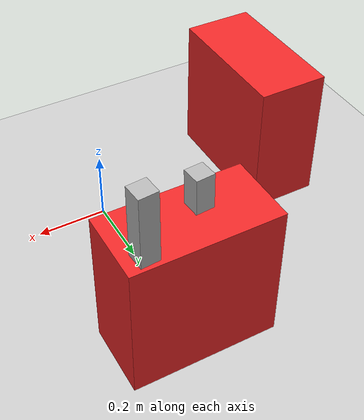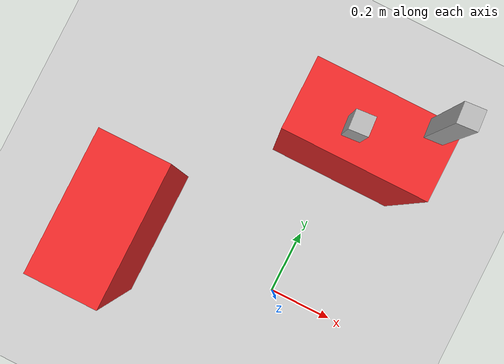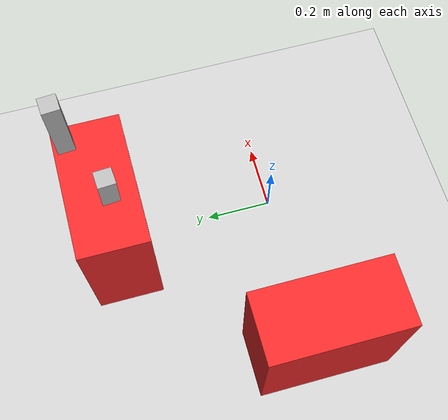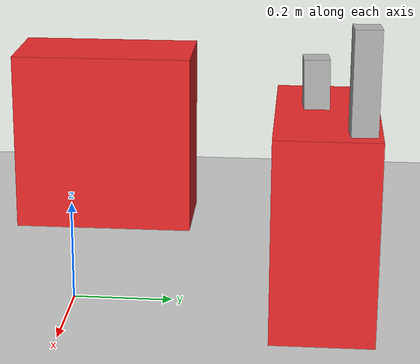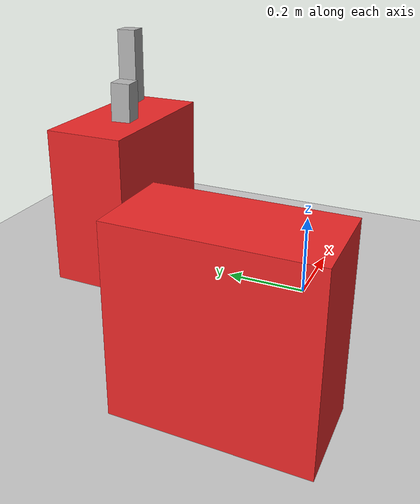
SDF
<sdf version="1.6">
 <world name="default">
  <light name="sun" type="directional">
   <pose>0 0 10 0 -0 0</pose>
   <diffuse>0.8 0.8 0.8 1</diffuse>
   <specular>0.2 0.2 0.2 1</specular>
   <attenuation>
    <range>1000</range>
    <constant>0.9</constant>
    <linear>0.01</linear>
    <quadratic>0.001</quadratic>
   </attenuation>
   <direction>-0.5 0.1 -0.9</direction>
  </light>
  <model name="ground_plane">
   <static>1</static>
   <link name="link">
    <collision name="collision">
     <geometry><plane><normal>0 0 1</normal><size>100 100</size></plane></geometry>
     <surface><friction><ode><mu>100</mu><mu2>50</mu2></ode></friction></surface>
    </collision>
    <visual name="visual">
     <cast_shadows>0</cast_shadows>
     <geometry><plane><normal>0 0 1</normal><size>100 100</size></plane></geometry>
     <material>
      <script><uri>file://media/materials/scripts/gazebo.material</uri><name>Gazebo/Grey</name></script>
     </material>
    </visual>
   </link>
  </model>
  <gravity>0 0 -9.8</gravity>
  <magnetic_field>6e-06 2.3e-05 -4.2e-05</magnetic_field>
  <atmosphere type="adiabatic"/>
  <physics name="default_physics" default="0" type="ode">
   <max_step_size>0.001</max_step_size>
   <real_time_factor>1</real_time_factor>
   <real_time_update_rate>1000</real_time_update_rate>
  </physics>
  <scene><ambient>0.4 0.4 0.4 1</ambient><background>0.7 0.7 0.7 1</background><shadows>1</shadows></scene>
  <audio><device>default</device></audio>
  <spherical_coordinates>
   <surface_model>EARTH_WGS84</surface_model>
   <latitude_deg>0</latitude_deg>
   <longitude_deg>0</longitude_deg>
   <elevation>0</elevation>
   <heading_deg>0</heading_deg>
  </spherical_coordinates>
  <model name="cube_marker">
   <static>0</static>
   <link name="link">
    <inertial>
     <mass>0.05</mass>
     <inertia>
      <ixx>5.2083e-05</ixx>
      <ixy>0</ixy>
      <ixz>0</ixz>
      <iyy>5.2083e-05</iyy>
      <iyz>0</iyz>
      <izz>2.0833e-05</izz>
     </inertia>
    </inertial>
    <collision name="colision">
     <geometry><box><size>0.05 0.05 0.1</size></box></geometry>
     <surface>
      <friction><ode><mu>30</mu><mu2>30</mu2><fdir1>0 0 0</fdir1></ode></friction>
      <contact><ode><kp>1e+06</kp><kd>100</kd><min_depth>0.0025</min_depth><max_vel>1</max_vel></ode></contact>
     </surface>
    </collision>
    <visual name="visual1">
     <geometry>
      <mesh><uri>model://cube_marker/meshes/cube_marker_5cm.dae</uri><scale>1 1 2</scale></mesh>
     </geometry>
    </visual>
    <velocity_decay><linear>0</linear><angular>0</angular></velocity_decay>
   </link>
   <pose>-0.040103 0.477065 0.44805 -0.000542 0.021721 -1.49302</pose>
  </model>
  <model name="box">
   <pose>0 0.5 0.2 0 -0 0</pose>
   <static>1</static>
   <link name="link">
    <inertial>
     <mass>1</mass>
     <inertia><ixx>0.0166</ixx><ixy>0</ixy><ixz>0</ixz><iyy>0.02656</iyy><iyz>0</iyz><izz>0.0166</izz></inertia>
    </inertial>
    <collision name="collision"><geometry><box><size>0.4 0.2 0.4</size></box></geometry></collision>
    <visual name="visual">
     <geometry><box><size>0.4 0.2 0.4</size></box></geometry>
     <material>
      <ambient>0.937 0.161 0.161 1</ambient>
      <diffuse>0.937 0.161 0.161 1</diffuse>
      <specular>0 0 0 0</specular>
      <emissive>0 0 0 1</emissive>
     </material>
    </visual>
   </link>
  </model>
  <model name="box_0">
   <pose>-0.5 0 0.2 0 0 -1.5707</pose>
   <static>1</static>
   <link name="link">
    <inertial>
     <mass>1</mass>
     <inertia><ixx>0.0166</ixx><ixy>0</ixy><ixz>0</ixz><iyy>0.02656</iyy><iyz>0</iyz><izz>0.0166</izz></inertia>
    </inertial>
    <collision name="collision"><geometry><box><size>0.4 0.2 0.4</size></box></geometry></collision>
    <visual name="visual">
     <geometry><box><size>0.4 0.2 0.4</size></box></geometry>
     <material>
      <ambient>0.937 0.161 0.161 1</ambient>
      <diffuse>0.937 0.161 0.161 1</diffuse>
      <specular>0 0 0 0</specular>
      <emissive>0 0 0 1</emissive>
     </material>
    </visual>
   </link>
  </model>
  <model name="cube_marker_1">
   <static>0</static>
   <link name="link">
    <inertial>
     <mass>0.05</mass>
     <inertia>
      <ixx>5.2083e-05</ixx>
      <ixy>0</ixy>
      <ixz>0</ixz>
      <iyy>5.2083e-05</iyy>
      <iyz>0</iyz>
      <izz>2.0833e-05</izz>
     </inertia>
    </inertial>
    <collision name="colision">
     <geometry><box><size>0.05 0.05 0.2</size></box></geometry>
     <surface>
      <friction><ode><mu>30</mu><mu2>30</mu2><fdir1>0 0 0</fdir1></ode></friction>
      <contact><ode><kp>1e+06</kp><kd>100</kd><min_depth>0.0025</min_depth><max_vel>1</max_vel></ode></contact>
     </surface>
    </collision>
    <visual name="visual1">
     <geometry>
      <mesh><uri>model://cube_marker_1/meshes/cube_marker_5cm.dae</uri><scale>1 1 4</scale></mesh>
     </geometry>
    </visual>
    <velocity_decay><linear>0</linear><angular>0</angular></velocity_decay>
   </link>
   <pose>0.14395 0.563914 0.497637 -0.005558 -0 -1.49398</pose>
  </model>
 </world>
</sdf>
